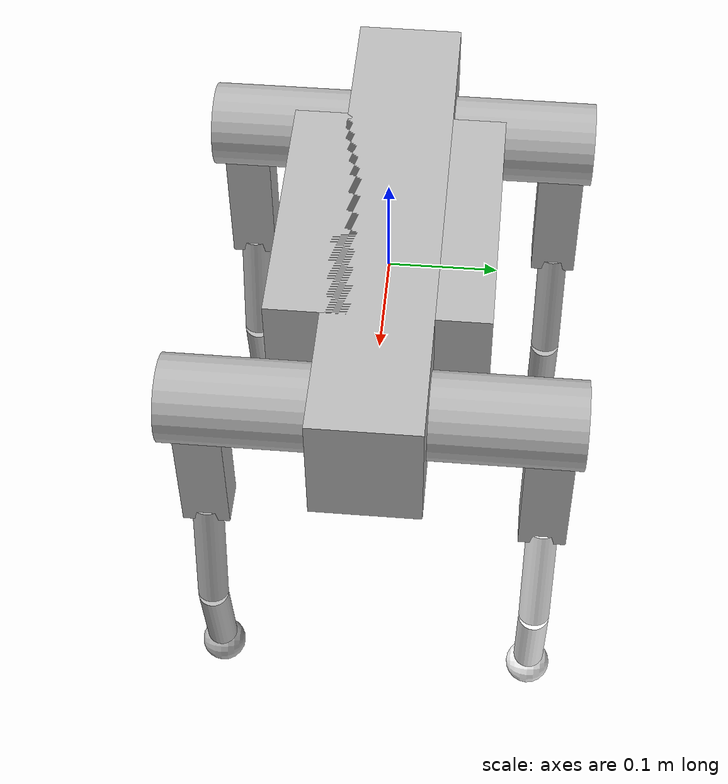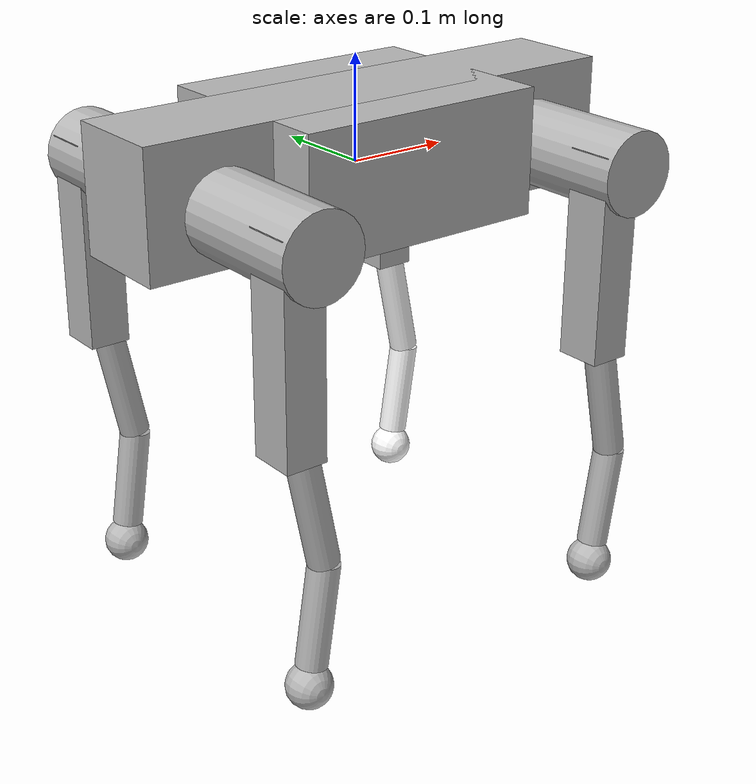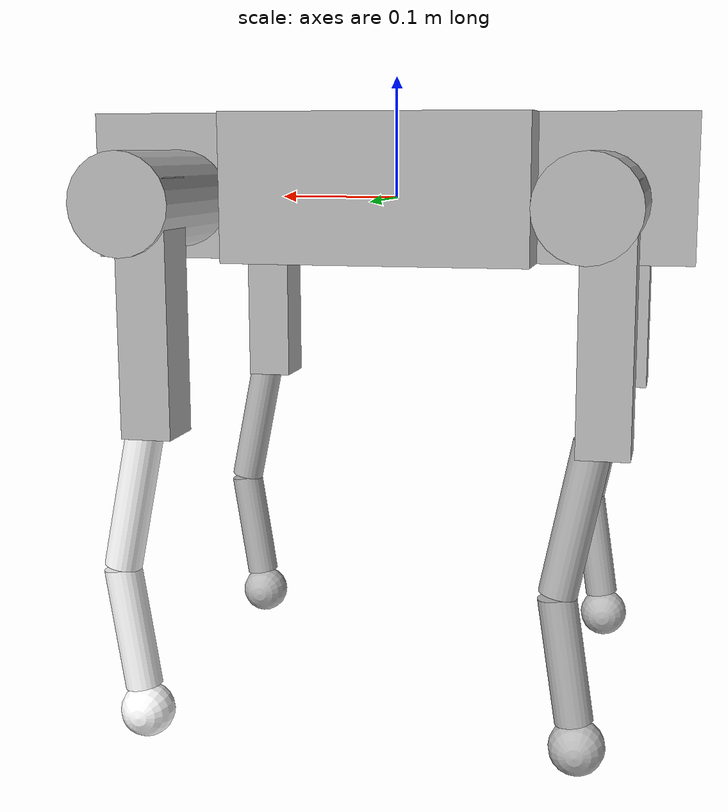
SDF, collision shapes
<sdf version='1.11'>
  <model name='Lite3'>
    <link name='TORSO'>
      <inertial>
        <pose>0 0 0 0 0 0</pose>
        <mass>5.6055999999999999</mass>
        <inertia>
          <ixx>0.024559999999999998</ixx>
          <ixy>0</ixy>
          <ixz>0</ixz>
          <iyy>0.05518</iyy>
          <iyz>0</iyz>
          <izz>0.07016</izz>
        </inertia>
      </inertial>
      <collision name='TORSO_collision'>
        <pose>0 0 0.01 0 0 0</pose>
        <geometry>
          <box>
            <size>0.5 0.10000000000000001 0.12</size>
          </box>
        </geometry>
      </collision>
      <collision name='TORSO_collision_1'>
        <pose>0 0 0.01 0 0 0</pose>
        <geometry>
          <box>
            <size>0.25 0.20000000000000001 0.12</size>
          </box>
        </geometry>
      </collision>
      <visual name='TORSO_visual'>
        <pose>0 0 0 0 0 0</pose>
        <geometry>
          <mesh>
            <scale>1 1 1</scale>
            <uri>model://lite3_description/Lite3/urdf/meshes/torso.STL</uri>
          </mesh>
        </geometry>
      </visual>
    </link>
    <joint name='FL_HipX_joint' type='revolute'>
      <pose relative_to='TORSO'>0.17449999999999999 0.062 0 0 0 0</pose>
      <parent>TORSO</parent>
      <child>FL_HIP</child>
      <axis>
        <xyz>-1 0 0</xyz>
        <limit>
          <lower>-0.52300000000000002</lower>
          <upper>0.52300000000000002</upper>
          <effort>24</effort>
          <velocity>26.199999999999999</velocity>
        </limit>
        <dynamics>
          <spring_reference>0</spring_reference>
          <spring_stiffness>0</spring_stiffness>
        </dynamics>
      </axis>
    </joint>
    <link name='FL_HIP'>
      <pose relative_to='FL_HipX_joint'>0 0 0 0 0 0</pose>
      <inertial>
        <pose>-0.0060099999999999997 -0.0066531999999999997 0.00034295000000000001 0 0 0</pose>
        <mass>0.55000000000000004</mass>
        <inertia>
          <ixx>0.0003949</ixx>
          <ixy>0</ixy>
          <ixz>0</ixz>
          <iyy>0.00040279999999999998</iyy>
          <iyz>0</iyz>
          <izz>0.00044719999999999997</izz>
        </inertia>
      </inertial>
      <collision name='FL_HIP_collision'>
        <pose>0 0.050000000000000003 0 1.5707963199999997 0 0</pose>
        <geometry>
          <cylinder>
            <length>0.14999999999999999</length>
            <radius>0.040000000000000001</radius>
          </cylinder>
        </geometry>
      </collision>
      <visual name='FL_HIP_visual'>
        <pose>0 0 0 0 0 0</pose>
        <geometry>
          <mesh>
            <scale>1 1 1</scale>
            <uri>model://lite3_description/Lite3/urdf/meshes/hip.STL</uri>
          </mesh>
        </geometry>
      </visual>
    </link>
    <joint name='FL_HipY_joint' type='revolute'>
      <pose relative_to='FL_HIP'>0 0.097350000000000006 0 0 0 0</pose>
      <parent>FL_HIP</parent>
      <child>FL_THIGH</child>
      <axis>
        <xyz>0 -1 0</xyz>
        <limit>
          <lower>-2.6699999999999999</lower>
          <upper>0.314</upper>
          <effort>24</effort>
          <velocity>26.199999999999999</velocity>
        </limit>
        <dynamics>
          <spring_reference>0</spring_reference>
          <spring_stiffness>0</spring_stiffness>
        </dynamics>
      </axis>
    </joint>
    <link name='FL_THIGH'>
      <pose relative_to='FL_HipY_joint'>0 0 0 0 0 0</pose>
      <inertial>
        <pose>-0.0039245 -0.014631999999999999 -0.025146000000000002 0 0 0</pose>
        <mass>0.85999999999999999</mass>
        <inertia>
          <ixx>0.0057359999999999998</ixx>
          <ixy>0</ixy>
          <ixz>0</ixz>
          <iyy>0.00496</iyy>
          <iyz>0</iyz>
          <izz>0.001436</izz>
        </inertia>
      </inertial>
      <collision name='FL_THIGH_collision'>
        <pose>-0.014999999999999999 0 -0.080000000000000002 0 0 0</pose>
        <geometry>
          <box>
            <size>0.040000000000000001 0.044999999999999998 0.20000000000000001</size>
          </box>
        </geometry>
      </collision>
      <visual name='FL_THIGH_visual'>
        <pose>0 0 0 0 0 0</pose>
        <geometry>
          <mesh>
            <scale>1 1 1</scale>
            <uri>model://lite3_description/Lite3/urdf/meshes/thigh.STL</uri>
          </mesh>
        </geometry>
      </visual>
    </link>
    <joint name='FL_Knee_joint' type='revolute'>
      <pose relative_to='FL_THIGH'>0 0 -0.20000000000000001 0 0 0</pose>
      <parent>FL_THIGH</parent>
      <child>FL_SHANK</child>
      <axis>
        <xyz>0 -1 0</xyz>
        <limit>
          <lower>0.52400000000000002</lower>
          <upper>2.7919999999999998</upper>
          <effort>36</effort>
          <velocity>17.300000000000001</velocity>
        </limit>
        <dynamics>
          <spring_reference>0</spring_reference>
          <spring_stiffness>0</spring_stiffness>
        </dynamics>
      </axis>
    </joint>
    <link name='FL_SHANK'>
      <pose relative_to='FL_Knee_joint'>0 0 0 0 0 0</pose>
      <inertial>
        <pose>0.0057303364161849718 -1.2854653179190751e-06 -0.1318069942196532 0 0 0</pose>
        <mass>0.17299999999999999</mass>
        <inertia>
          <ixx>0.0010329543332743621</ixx>
          <ixy>1.6658087961849691e-10</ixy>
          <ixz>-1.0148425793063621e-05</ixz>
          <iyy>0.0010500269160724949</iyy>
          <iyz>2.2765590780346828e-09</iyz>
          <izz>3.5880582872869052e-05</izz>
        </inertia>
      </inertial>
      <collision name='FL_SHANK_collision'>
        <pose>0.0050000000000000001 0 -0.029999999999999999 0 -0.20000000000000004 0</pose>
        <geometry>
          <cylinder>
            <length>0.12</length>
            <radius>0.014999999999999999</radius>
          </cylinder>
        </geometry>
        <surface>
          <contact>
            <ode/>
          </contact>
          <friction>
            <ode/>
          </friction>
        </surface>
      </collision>
      <collision name='FL_SHANK_collision_1'>
        <pose>0.01 0 -0.14000000000000001 0 0.14999999999999999 0</pose>
        <geometry>
          <cylinder>
            <length>0.10000000000000001</length>
            <radius>0.014999999999999999</radius>
          </cylinder>
        </geometry>
        <surface>
          <contact>
            <ode/>
          </contact>
          <friction>
            <ode/>
          </friction>
        </surface>
      </collision>
      <collision name='FL_SHANK_fixed_joint_lump__FL_FOOT_collision_2'>
        <pose>0 0 -0.21012 1.57079632679 0 0</pose>
        <geometry>
          <sphere>
            <radius>0.021999999999999999</radius>
          </sphere>
        </geometry>
      </collision>
      <visual name='FL_SHANK_visual'>
        <pose>0 0 0 0 0 0</pose>
        <geometry>
          <mesh>
            <scale>1 1 1</scale>
            <uri>model://lite3_description/Lite3/urdf/meshes/shank.STL</uri>
          </mesh>
        </geometry>
        <material>
          <diffuse>1 1 1 1</diffuse>
          <ambient>1 1 1 1</ambient>
        </material>
      </visual>
      <sensor name='FL_contact' type='contact'>
        <always_on>true</always_on>
        <update_rate>500</update_rate>
        <topic>/lite3/contact/FL</topic>
        <contact>
          <collision>FL_SHANK_fixed_joint_lump__FL_FOOT_collision_2</collision>
          <topic>__default_topic__</topic>
        </contact>
      </sensor>
    </link>
    <joint name='FR_HipX_joint' type='revolute'>
      <pose relative_to='TORSO'>0.17449999999999999 -0.062 0 0 0 0</pose>
      <parent>TORSO</parent>
      <child>FR_HIP</child>
      <axis>
        <xyz>-1 0 0</xyz>
        <limit>
          <lower>-0.52300000000000002</lower>
          <upper>0.52300000000000002</upper>
          <effort>24</effort>
          <velocity>26.199999999999999</velocity>
        </limit>
        <dynamics>
          <spring_reference>0</spring_reference>
          <spring_stiffness>0</spring_stiffness>
        </dynamics>
      </axis>
    </joint>
    <link name='FR_HIP'>
      <pose relative_to='FR_HipX_joint'>0 0 0 0 0 0</pose>
      <inertial>
        <pose>-0.010579 0.011358 0.00048546 0 0 0</pose>
        <mass>0.55000000000000004</mass>
        <inertia>
          <ixx>0.00044719999999999997</ixx>
          <ixy>0</ixy>
          <ixz>0</ixz>
          <iyy>0.00040279999999999998</iyy>
          <iyz>0</iyz>
          <izz>0.0003949</izz>
        </inertia>
      </inertial>
      <collision name='FR_HIP_collision'>
        <pose>0 -0.050000000000000003 0 1.5707963199999997 0 0</pose>
        <geometry>
          <cylinder>
            <length>0.14999999999999999</length>
            <radius>0.040000000000000001</radius>
          </cylinder>
        </geometry>
      </collision>
      <visual name='FR_HIP_visual'>
        <pose>0 0 0 0 0 0</pose>
        <geometry>
          <mesh>
            <scale>1 -1 1</scale>
            <uri>model://lite3_description/Lite3/urdf/meshes/hip.STL</uri>
          </mesh>
        </geometry>
      </visual>
    </link>
    <joint name='FR_HipY_joint' type='revolute'>
      <pose relative_to='FR_HIP'>0 -0.097350000000000006 0 0 0 0</pose>
      <parent>FR_HIP</parent>
      <child>FR_THIGH</child>
      <axis>
        <xyz>0 -1 0</xyz>
        <limit>
          <lower>-2.6699999999999999</lower>
          <upper>0.314</upper>
          <effort>24</effort>
          <velocity>26.199999999999999</velocity>
        </limit>
        <dynamics>
          <spring_reference>0</spring_reference>
          <spring_stiffness>0</spring_stiffness>
        </dynamics>
      </axis>
    </joint>
    <link name='FR_THIGH'>
      <pose relative_to='FR_HipY_joint'>0 0 0 0 0 0</pose>
      <inertial>
        <pose>-0.0039245 0.014631999999999999 -0.025146000000000002 0 0 0</pose>
        <mass>0.85999999999999999</mass>
        <inertia>
          <ixx>0.0057359999999999998</ixx>
          <ixy>0</ixy>
          <ixz>0</ixz>
          <iyy>0.00496</iyy>
          <iyz>0</iyz>
          <izz>0.001436</izz>
        </inertia>
      </inertial>
      <collision name='FR_THIGH_collision'>
        <pose>-0.014999999999999999 0 -0.080000000000000002 0 0 0</pose>
        <geometry>
          <box>
            <size>0.040000000000000001 0.044999999999999998 0.20000000000000001</size>
          </box>
        </geometry>
      </collision>
      <visual name='FR_THIGH_visual'>
        <pose>0 0 0 0 0 0</pose>
        <geometry>
          <mesh>
            <scale>1 -1 1</scale>
            <uri>model://lite3_description/Lite3/urdf/meshes/thigh.STL</uri>
          </mesh>
        </geometry>
      </visual>
    </link>
    <joint name='FR_Knee_joint' type='revolute'>
      <pose relative_to='FR_THIGH'>0 0 -0.20000000000000001 0 0 0</pose>
      <parent>FR_THIGH</parent>
      <child>FR_SHANK</child>
      <axis>
        <xyz>0 -1 0</xyz>
        <limit>
          <lower>0.52400000000000002</lower>
          <upper>2.7919999999999998</upper>
          <effort>36</effort>
          <velocity>17.300000000000001</velocity>
        </limit>
        <dynamics>
          <spring_reference>0</spring_reference>
          <spring_stiffness>0</spring_stiffness>
        </dynamics>
      </axis>
    </joint>
    <link name='FR_SHANK'>
      <pose relative_to='FR_Knee_joint'>0 0 0 0 0 0</pose>
      <inertial>
        <pose>0.0057303364161849718 -1.286968786127168e-06 -0.1318069942196532 0 0 0</pose>
        <mass>0.17299999999999999</mass>
        <inertia>
          <ixx>0.001032954333274449</ixx>
          <ixy>1.667757110566474e-10</ixy>
          <ixz>-1.0148425793063621e-05</ixz>
          <iyy>0.0010500269160724949</iyy>
          <iyz>2.2792217202312161e-09</iyz>
          <izz>3.588058287295652e-05</izz>
        </inertia>
      </inertial>
      <collision name='FR_SHANK_collision'>
        <pose>0.0050000000000000001 0 -0.029999999999999999 0 -0.20000000000000004 0</pose>
        <geometry>
          <cylinder>
            <length>0.12</length>
            <radius>0.014999999999999999</radius>
          </cylinder>
        </geometry>
      </collision>
      <collision name='FR_SHANK_collision_1'>
        <pose>0.01 0 -0.14000000000000001 0 0.14999999999999999 0</pose>
        <geometry>
          <cylinder>
            <length>0.10000000000000001</length>
            <radius>0.014999999999999999</radius>
          </cylinder>
        </geometry>
      </collision>
      <collision name='FR_SHANK_fixed_joint_lump__FR_FOOT_collision_2'>
        <pose>0 0 -0.21012 1.57079632679 0 0</pose>
        <geometry>
          <sphere>
            <radius>0.021999999999999999</radius>
          </sphere>
        </geometry>
      </collision>
      <visual name='FR_SHANK_visual'>
        <pose>0 0 0 0 0 0</pose>
        <geometry>
          <mesh>
            <scale>1 1 1</scale>
            <uri>model://lite3_description/Lite3/urdf/meshes/shank.STL</uri>
          </mesh>
        </geometry>
      </visual>
    </link>
    <joint name='HL_HipX_joint' type='revolute'>
      <pose relative_to='TORSO'>-0.17449999999999999 0.062 0 0 0 0</pose>
      <parent>TORSO</parent>
      <child>HL_HIP</child>
      <axis>
        <xyz>-1 0 0</xyz>
        <limit>
          <lower>-0.52300000000000002</lower>
          <upper>0.52300000000000002</upper>
          <effort>24</effort>
          <velocity>26.199999999999999</velocity>
        </limit>
        <dynamics>
          <spring_reference>0</spring_reference>
          <spring_stiffness>0</spring_stiffness>
        </dynamics>
      </axis>
    </joint>
    <link name='HL_HIP'>
      <pose relative_to='HL_HipX_joint'>0 0 0 0 0 0</pose>
      <inertial>
        <pose>0.010905 -0.012636 0.0010510000000000001 0 0 0</pose>
        <mass>0.55000000000000004</mass>
        <inertia>
          <ixx>0.0003949</ixx>
          <ixy>0</ixy>
          <ixz>0</ixz>
          <iyy>0.00040279999999999998</iyy>
          <iyz>0</iyz>
          <izz>0.00044719999999999997</izz>
        </inertia>
      </inertial>
      <collision name='HL_HIP_collision'>
        <pose>0 0.050000000000000003 0 1.5707963199999997 0 0</pose>
        <geometry>
          <cylinder>
            <length>0.14999999999999999</length>
            <radius>0.040000000000000001</radius>
          </cylinder>
        </geometry>
      </collision>
      <visual name='HL_HIP_visual'>
        <pose>0 0 0 0 0 0</pose>
        <geometry>
          <mesh>
            <scale>-1 1 1</scale>
            <uri>model://lite3_description/Lite3/urdf/meshes/hip.STL</uri>
          </mesh>
        </geometry>
      </visual>
    </link>
    <joint name='HL_HipY_joint' type='revolute'>
      <pose relative_to='HL_HIP'>0 0.097350000000000006 0 0 0 0</pose>
      <parent>HL_HIP</parent>
      <child>HL_THIGH</child>
      <axis>
        <xyz>0 -1 0</xyz>
        <limit>
          <lower>-2.6699999999999999</lower>
          <upper>0.314</upper>
          <effort>24</effort>
          <velocity>26.199999999999999</velocity>
        </limit>
        <dynamics>
          <spring_reference>0</spring_reference>
          <spring_stiffness>0</spring_stiffness>
        </dynamics>
      </axis>
    </joint>
    <link name='HL_THIGH'>
      <pose relative_to='HL_HipY_joint'>0 0 0 0 0 0</pose>
      <inertial>
        <pose>-0.0039245 -0.014631999999999999 -0.025146000000000002 0 0 0</pose>
        <mass>0.85999999999999999</mass>
        <inertia>
          <ixx>0.0057359999999999998</ixx>
          <ixy>0</ixy>
          <ixz>0</ixz>
          <iyy>0.00496</iyy>
          <iyz>0</iyz>
          <izz>0.001436</izz>
        </inertia>
      </inertial>
      <collision name='HL_THIGH_collision'>
        <pose>-0.014999999999999999 0 -0.080000000000000002 0 0 0</pose>
        <geometry>
          <box>
            <size>0.040000000000000001 0.044999999999999998 0.20000000000000001</size>
          </box>
        </geometry>
      </collision>
      <visual name='HL_THIGH_visual'>
        <pose>0 0 0 0 0 0</pose>
        <geometry>
          <mesh>
            <scale>1 1 1</scale>
            <uri>model://lite3_description/Lite3/urdf/meshes/thigh.STL</uri>
          </mesh>
        </geometry>
      </visual>
    </link>
    <joint name='HL_Knee_joint' type='revolute'>
      <pose relative_to='HL_THIGH'>0 0 -0.20000000000000001 0 0 0</pose>
      <parent>HL_THIGH</parent>
      <child>HL_SHANK</child>
      <axis>
        <xyz>0 -1 0</xyz>
        <limit>
          <lower>0.52400000000000002</lower>
          <upper>2.7919999999999998</upper>
          <effort>36</effort>
          <velocity>17.300000000000001</velocity>
        </limit>
        <dynamics>
          <spring_reference>0</spring_reference>
          <spring_stiffness>0</spring_stiffness>
        </dynamics>
      </axis>
    </joint>
    <link name='HL_SHANK'>
      <pose relative_to='HL_Knee_joint'>0 0 0 0 0 0</pose>
      <inertial>
        <pose>0.0057303364161849718 -1.287499421965318e-06 -0.1318069942196532 0 0 0</pose>
        <mass>0.17299999999999999</mass>
        <inertia>
          <ixx>0.0010329543332744809</ixx>
          <ixy>1.668444750936416e-10</ixy>
          <ixz>-1.0148425793063621e-05</ixz>
          <iyy>0.0010500269160724949</iyy>
          <iyz>2.2801614763005791e-09</iyz>
          <izz>3.5880582872987413e-05</izz>
        </inertia>
      </inertial>
      <collision name='HL_SHANK_collision'>
        <pose>0.0050000000000000001 0 -0.029999999999999999 0 -0.20000000000000004 0</pose>
        <geometry>
          <cylinder>
            <length>0.12</length>
            <radius>0.014999999999999999</radius>
          </cylinder>
        </geometry>
      </collision>
      <collision name='HL_SHANK_collision_1'>
        <pose>0.01 0 -0.14000000000000001 0 0.14999999999999999 0</pose>
        <geometry>
          <cylinder>
            <length>0.10000000000000001</length>
            <radius>0.014999999999999999</radius>
          </cylinder>
        </geometry>
      </collision>
      <collision name='HL_SHANK_fixed_joint_lump__HL_FOOT_collision_2'>
        <pose>0 0 -0.21012 1.57079632679 0 0</pose>
        <geometry>
          <sphere>
            <radius>0.021999999999999999</radius>
          </sphere>
        </geometry>
      </collision>
      <visual name='HL_SHANK_visual'>
        <pose>0 0 0 0 0 0</pose>
        <geometry>
          <mesh>
            <scale>1 1 1</scale>
            <uri>model://lite3_description/Lite3/urdf/meshes/shank.STL</uri>
          </mesh>
        </geometry>
      </visual>
    </link>
    <joint name='HR_HipX_joint' type='revolute'>
      <pose relative_to='TORSO'>-0.17449999999999999 -0.062 0 0 0 0</pose>
      <parent>TORSO</parent>
      <child>HR_HIP</child>
      <axis>
        <xyz>-1 0 0</xyz>
        <limit>
          <lower>-0.52300000000000002</lower>
          <upper>0.52300000000000002</upper>
          <effort>24</effort>
          <velocity>26.199999999999999</velocity>
        </limit>
        <dynamics>
          <spring_reference>0</spring_reference>
          <spring_stiffness>0</spring_stiffness>
        </dynamics>
      </axis>
    </joint>
    <link name='HR_HIP'>
      <pose relative_to='HR_HipX_joint'>0 0 0 0 0 0</pose>
      <inertial>
        <pose>0.010354 0.011423000000000001 0.00049498000000000001 0 0 0</pose>
        <mass>0.55000000000000004</mass>
        <inertia>
          <ixx>0.00044719999999999997</ixx>
          <ixy>0</ixy>
          <ixz>0</ixz>
          <iyy>0.00040279999999999998</iyy>
          <iyz>0</iyz>
          <izz>0.0003949</izz>
        </inertia>
      </inertial>
      <collision name='HR_HIP_collision'>
        <pose>0 -0.050000000000000003 0 1.5707963199999997 0 0</pose>
        <geometry>
          <cylinder>
            <length>0.14999999999999999</length>
            <radius>0.040000000000000001</radius>
          </cylinder>
        </geometry>
      </collision>
      <visual name='HR_HIP_visual'>
        <pose>0 0 0 0 0 0</pose>
        <geometry>
          <mesh>
            <scale>-1 -1 1</scale>
            <uri>model://lite3_description/Lite3/urdf/meshes/hip.STL</uri>
          </mesh>
        </geometry>
      </visual>
    </link>
    <joint name='HR_HipY_joint' type='revolute'>
      <pose relative_to='HR_HIP'>0 -0.097350000000000006 0 0 0 0</pose>
      <parent>HR_HIP</parent>
      <child>HR_THIGH</child>
      <axis>
        <xyz>0 -1 0</xyz>
        <limit>
          <lower>-2.6699999999999999</lower>
          <upper>0.314</upper>
          <effort>24</effort>
          <velocity>26.199999999999999</velocity>
        </limit>
        <dynamics>
          <spring_reference>0</spring_reference>
          <spring_stiffness>0</spring_stiffness>
        </dynamics>
      </axis>
    </joint>
    <link name='HR_THIGH'>
      <pose relative_to='HR_HipY_joint'>0 0 0 0 0 0</pose>
      <inertial>
        <pose>-0.0039245 0.014631999999999999 -0.025146000000000002 0 0 0</pose>
        <mass>0.85999999999999999</mass>
        <inertia>
          <ixx>0.0057359999999999998</ixx>
          <ixy>0</ixy>
          <ixz>0</ixz>
          <iyy>0.00496</iyy>
          <iyz>0</iyz>
          <izz>0.001436</izz>
        </inertia>
      </inertial>
      <collision name='HR_THIGH_collision'>
        <pose>-0.014999999999999999 0 -0.080000000000000002 0 0 0</pose>
        <geometry>
          <box>
            <size>0.040000000000000001 0.044999999999999998 0.20000000000000001</size>
          </box>
        </geometry>
      </collision>
      <visual name='HR_THIGH_visual'>
        <pose>0 0 0 0 0 0</pose>
        <geometry>
          <mesh>
            <scale>1 -1 1</scale>
            <uri>model://lite3_description/Lite3/urdf/meshes/thigh.STL</uri>
          </mesh>
        </geometry>
      </visual>
    </link>
    <joint name='HR_Knee_joint' type='revolute'>
      <pose relative_to='HR_THIGH'>0 0 -0.20000000000000001 0 0 0</pose>
      <parent>HR_THIGH</parent>
      <child>HR_SHANK</child>
      <axis>
        <xyz>0 -1 0</xyz>
        <limit>
          <lower>0.52400000000000002</lower>
          <upper>2.7919999999999998</upper>
          <effort>36</effort>
          <velocity>17.300000000000001</velocity>
        </limit>
        <dynamics>
          <spring_reference>0</spring_reference>
          <spring_stiffness>0</spring_stiffness>
        </dynamics>
      </axis>
    </joint>
    <link name='HR_SHANK'>
      <pose relative_to='HR_Knee_joint'>0 0 0 0 0 0</pose>
      <inertial>
        <pose>0.0057303364161849718 -1.2849346820809251e-06 -0.1318069942196532 0 0 0</pose>
        <mass>0.17299999999999999</mass>
        <inertia>
          <ixx>0.001032954333274332</ixx>
          <ixy>1.6651211558150289e-10</ixy>
          <ixz>-1.0148425793063621e-05</ixz>
          <iyy>0.0010500269160724949</iyy>
          <iyz>2.2756193219653169e-09</iyz>
          <izz>3.5880582872838213e-05</izz>
        </inertia>
      </inertial>
      <collision name='HR_SHANK_collision'>
        <pose>0.0050000000000000001 0 -0.029999999999999999 0 -0.20000000000000004 0</pose>
        <geometry>
          <cylinder>
            <length>0.12</length>
            <radius>0.014999999999999999</radius>
          </cylinder>
        </geometry>
      </collision>
      <collision name='HR_SHANK_collision_1'>
        <pose>0.01 0 -0.14000000000000001 0 0.14999999999999999 0</pose>
        <geometry>
          <cylinder>
            <length>0.10000000000000001</length>
            <radius>0.014999999999999999</radius>
          </cylinder>
        </geometry>
      </collision>
      <collision name='HR_SHANK_fixed_joint_lump__HR_FOOT_collision_2'>
        <pose>0 0 -0.21012 1.57079632679 0 0</pose>
        <geometry>
          <sphere>
            <radius>0.021999999999999999</radius>
          </sphere>
        </geometry>
      </collision>
      <visual name='HR_SHANK_visual'>
        <pose>0 0 0 0 0 0</pose>
        <geometry>
          <mesh>
            <scale>1 1 1</scale>
            <uri>model://lite3_description/Lite3/urdf/meshes/shank.STL</uri>
          </mesh>
        </geometry>
      </visual>
    </link>
    <plugin name='gz_ros2_control::GazeboSimROS2ControlPlugin' filename='libgz_ros2_control-system.so'>
      <parameters>/home/lexion/lite3_ws/src/lite3_gazebo/config/controllers.yaml</parameters>
    </plugin>
    <frame name='FL_Ankle' attached_to='FL_SHANK'>
      <pose>0 0 -0.21012 0 0 0</pose>
    </frame>
    <frame name='FL_FOOT' attached_to='FL_Ankle'>
      <pose>0 0 0 0 0 0</pose>
    </frame>
    <frame name='FR_Ankle' attached_to='FR_SHANK'>
      <pose>0 0 -0.21012 0 0 0</pose>
    </frame>
    <frame name='FR_FOOT' attached_to='FR_Ankle'>
      <pose>0 0 0 0 0 0</pose>
    </frame>
    <frame name='HL_Ankle' attached_to='HL_SHANK'>
      <pose>0 0 -0.21012 0 0 0</pose>
    </frame>
    <frame name='HL_FOOT' attached_to='HL_Ankle'>
      <pose>0 0 0 0 0 0</pose>
    </frame>
    <frame name='HR_Ankle' attached_to='HR_SHANK'>
      <pose>0 0 -0.21012 0 0 0</pose>
    </frame>
    <frame name='HR_FOOT' attached_to='HR_Ankle'>
      <pose>0 0 0 0 0 0</pose>
    </frame>
  </model>
</sdf>
